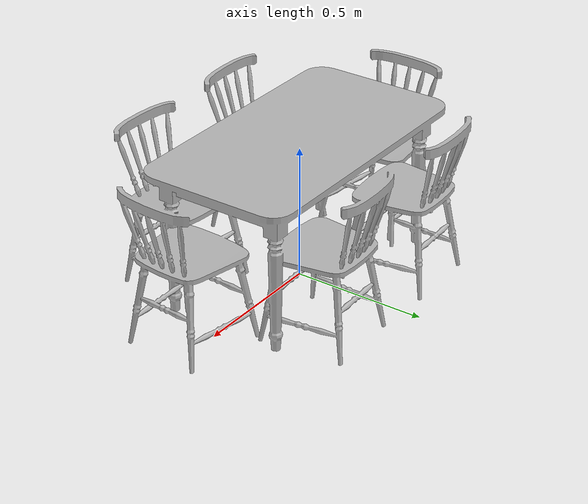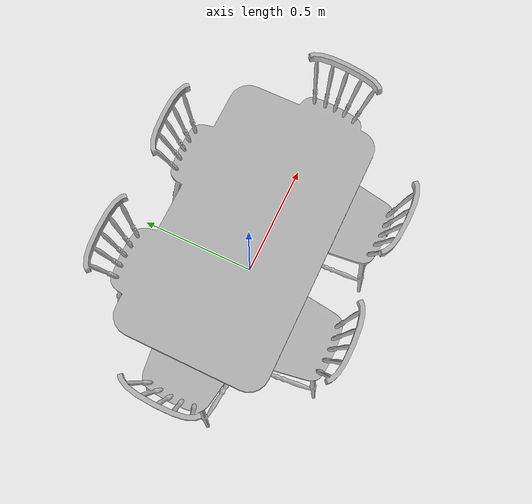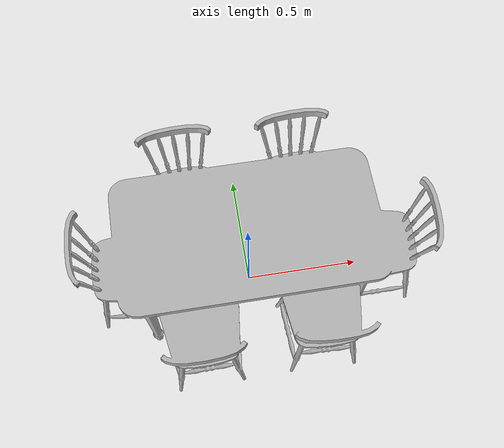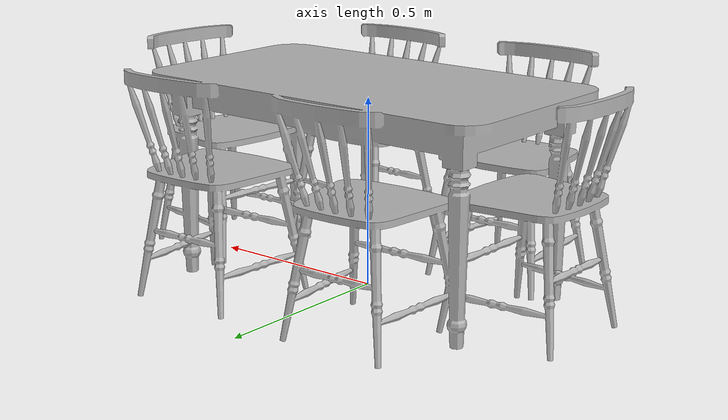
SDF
<?xml version="1.0"?>
<sdf version="1.4">
  <model name="table_and_chairs">
    <static>true</static>
    <link name="link">
      <pose>0 0 0 0 0 0</pose>
      <collision name="collision">
        <geometry>
          <mesh>
             <uri>model://table_and_chairs/table_and_chairs.dae</uri>
	     <scale>0.7 0.7 0.7</scale>
          </mesh>
        </geometry>
      </collision>
      <visual name="visual">
         <geometry>
          <mesh>
            <uri>model://table_and_chairs/table_and_chairs.dae</uri>
		<scale>0.7 0.7 0.7</scale>
          </mesh>
        </geometry>
      </visual>
    </link>
  </model>
</sdf>
